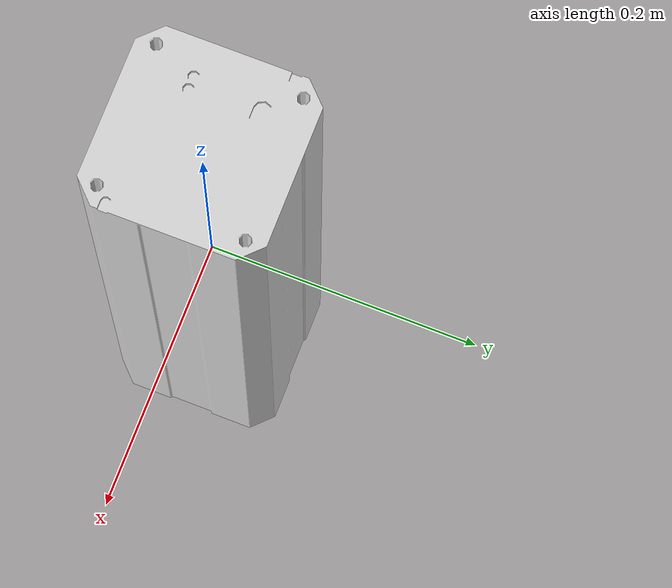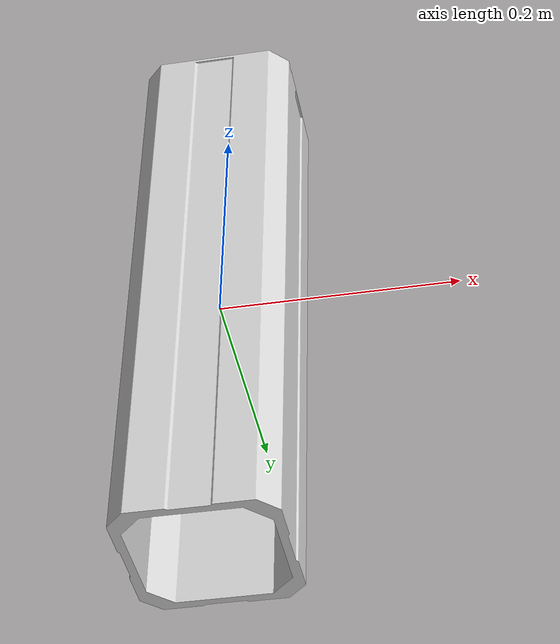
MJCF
<mujoco model="lift_high_500mm">
  <default>
    <default class="visual">
      <geom group="2" type="mesh" contype="0" conaffinity="0"/>
    </default>
    <default class="collision">
      <geom group="3" type="mesh"/>
    </default>
  </default>
  <asset>
    <material name="mtl_lift_high_500mm" specular="0.20000000000000004" shininess="1.0" rgba="0.85098039 0.85098039 0.85098039 1.0"/>
    <mesh file="lift_high_500mm.obj"/>
  </asset>
  <worldbody>
    <body name="lift_high_500mm">
      <geom material="mtl_lift_high_500mm" mesh="lift_high_500mm" class="visual"/>
      <geom mesh="lift_high_500mm" class="collision"/>
    </body>
  </worldbody>
</mujoco>
